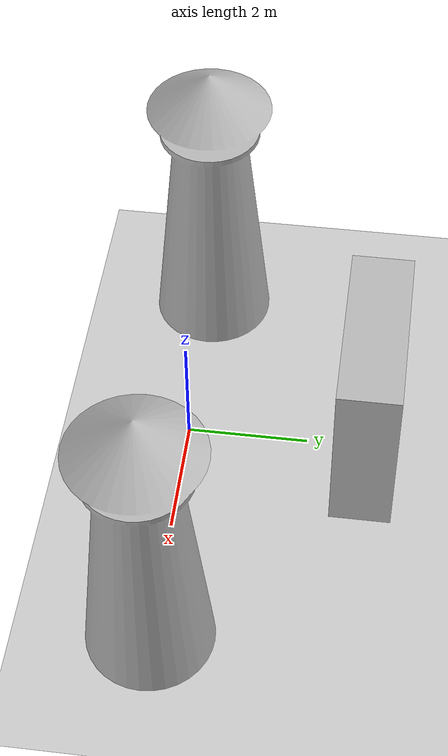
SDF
<?xml version="1.0"?>
<sdf version="1.5">
    <world name="default">
        <!-- A global light source -->
        <include>
            <uri>model://sun</uri>
        </include>
        <!-- A ground plane -->
        <include>
            <uri>model://ground_plane</uri>
        </include>
        <include>
            <name>block4</name>
            <uri>model://block4</uri>
            <pose>0.0 3.0 0.0 0.0 0.0 0.0</pose>
        </include>
        <include>
            <name>lighthouse4</name>
            <uri>model://lighthouse4</uri>
            <pose>-3.0 0.0 0.0 0.0 0.0 0.0</pose>
        </include>
        <include>
            <name>lighthouse4</name>
            <uri>model://lighthouse4</uri>
            <pose>4.0 0.0 0.0 0.0 0.0 0.0</pose>
        </include>
    </world>
</sdf>

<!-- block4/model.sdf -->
<sdf version="1.5">
  <model name="block4">
    <pose>0 0 0 0 0 0</pose>
    <static>true</static>
    <link name="body">
      <visual name="visual">
        <geometry>
            <mesh>
                <uri>model://block4/media/block4.dae</uri>
            </mesh>
        </geometry>
	    <material>
          <script>
            <uri>model://block4/media/scripts</uri>
            <uri>model://block4/media/textures</uri>
            <name>test/block4</name>
          </script>
        </material>
      </visual>
      <collision name="collision">
        <geometry>
            <mesh>
                <uri>model://block4/media/block4.dae</uri>
            </mesh>
        </geometry>
      </collision>
    </link>
  </model>
</sdf>

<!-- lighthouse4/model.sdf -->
<sdf version="1.5">
  <model name="lighthouse4">
    <pose>0 0 0 0 0 0</pose>
    <static>true</static>
    <link name="body">
      <visual name="visual">
        <geometry>
            <mesh>
                <uri>model://lighthouse4/media/lighthouse4.dae</uri>
            </mesh>
        </geometry>
	    <material>
          <script>
            <uri>model://lighthouse4/media/scripts</uri>
            <uri>model://lighthouse4/media/textures</uri>
            <name>test/lighthouse4</name>
          </script>
        </material>
      </visual>
      <collision name="collision">
        <geometry>
            <mesh>
                <uri>model://lighthouse4/media/lighthouse4.dae</uri>
            </mesh>
        </geometry>
      </collision>
    </link>
  </model>
</sdf>
